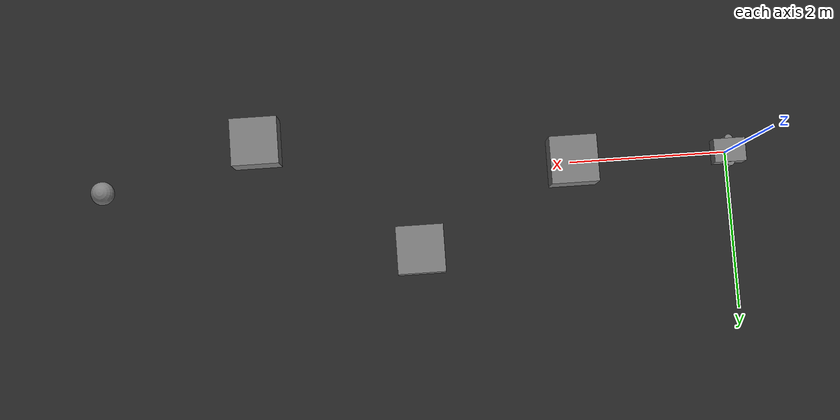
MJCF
<mujoco model="rover">
  <compiler angle="degree" inertiafromgeom="true"/>
  <option timestep="0.005" gravity="0 0 -9.81"/>

  <asset>
    <texture name="grid" type="2d" builtin="checker" width="512" height="512" rgb1=".1 .1 .1" rgb2=".2 .2 .2"/>
    <material name="grid" texture="grid" texuniform="true" texscale="1 1"/>
  </asset>

  <worldbody>
    <!-- Ground plane -->
    <geom name="ground" type="plane" size="50 50 1" material="grid" friction="0.5"/>

    <!-- Rover body -->
    <body name="chassis" pos="0 0 0.15">
      <!-- Chassis inertial and geometry -->
      <inertial pos="0 0 0" mass="2" diaginv="0.05 0.05 0.03"/>
      <geom name="chassis_geom" type="box" size="0.2 0.15 0.1" friction="0.3"/>

      <!-- Left wheel -->
      <body name="left_wheel" pos="0 0.15 0">
        <inertial pos="0 0 0" mass="0.5" diaginv="0.002 0.002 0.002"/>
        <joint name="left_motor" type="hinge" axis="0 1 0" range="-10 10"/>
        <geom name="left_wheel_geom" type="cylinder" size="0.05 0.08" friction="0.8"/>
      </body>

      <!-- Right wheel -->
      <body name="right_wheel" pos="0 -0.15 0">
        <inertial pos="0 0 0" mass="0.5" diaginv="0.002 0.002 0.002"/>
        <joint name="right_motor" type="hinge" axis="0 1 0" range="-10 10"/>
        <geom name="right_wheel_geom" type="cylinder" size="0.05 0.08" friction="0.8"/>
      </body>

      <!-- Caster wheel (for stability) -->
      <body name="caster" pos="-0.15 0 -0.08">
        <inertial pos="0 0 0" mass="0.1" diaginv="0.0001 0.0001 0.0001"/>
        <geom name="caster_geom" type="sphere" size="0.02" friction="0.1"/>
      </body>
    </body>

    <!-- Obstacles for training -->
    <!-- Obstacle 1 -->
    <body name="obstacle1" pos="2 0 0.2">
      <geom name="obs1" type="box" size="0.3 0.3 0.2" friction="0.5"/>
    </body>

    <!-- Obstacle 2 -->
    <body name="obstacle2" pos="4 1 0.2">
      <geom name="obs2" type="box" size="0.3 0.3 0.2" friction="0.5"/>
    </body>

    <!-- Obstacle 3 -->
    <body name="obstacle3" pos="6 -0.5 0.2">
      <geom name="obs3" type="box" size="0.3 0.3 0.2" friction="0.5"/>
    </body>

    <!-- Goal marker (invisible, just for reference) -->
    <body name="goal" pos="8 0 0.1">
      <geom name="goal_geom" type="sphere" size="0.15" friction="0" contype="0" conaffinity="0"/>
    </body>
  </worldbody>

  <!-- Define motors/actuators -->
  <actuator>
    <motor name="left_motor_control" joint="left_motor" ctrlrange="-1 1" gear="10"/>
    <motor name="right_motor_control" joint="right_motor" ctrlrange="-1 1" gear="10"/>
  </actuator>

  <!-- Sensors for observation -->
  <sensor>
    <!-- Position sensors -->
    <framepos name="chassis_pos" objtype="body" objname="chassis"/>
    <framequat name="chassis_quat" objtype="body" objname="chassis"/>

    <!-- Velocity sensors -->
    <framelinvel name="chassis_linvel" objtype="body" objname="chassis"/>
    <frameangvel name="chassis_angvel" objtype="body" objname="chassis"/>

    <!-- Joint sensors -->
    <jointpos name="left_joint_pos" joint="left_motor"/>
    <jointpos name="right_joint_pos" joint="right_motor"/>
    <jointvel name="left_joint_vel" joint="left_motor"/>
    <jointvel name="right_joint_vel" joint="right_motor"/>
  </sensor>
</mujoco>
